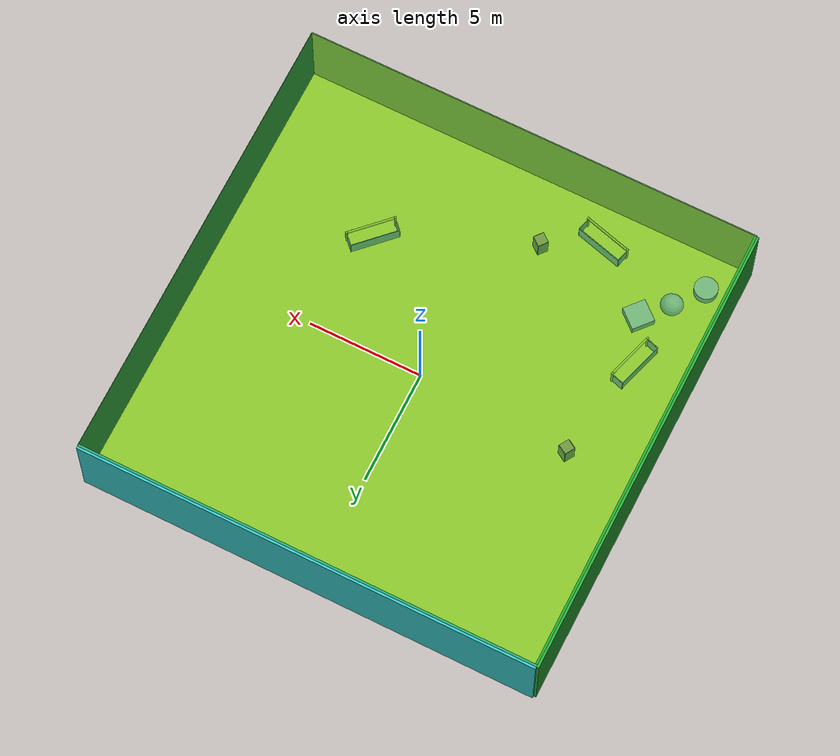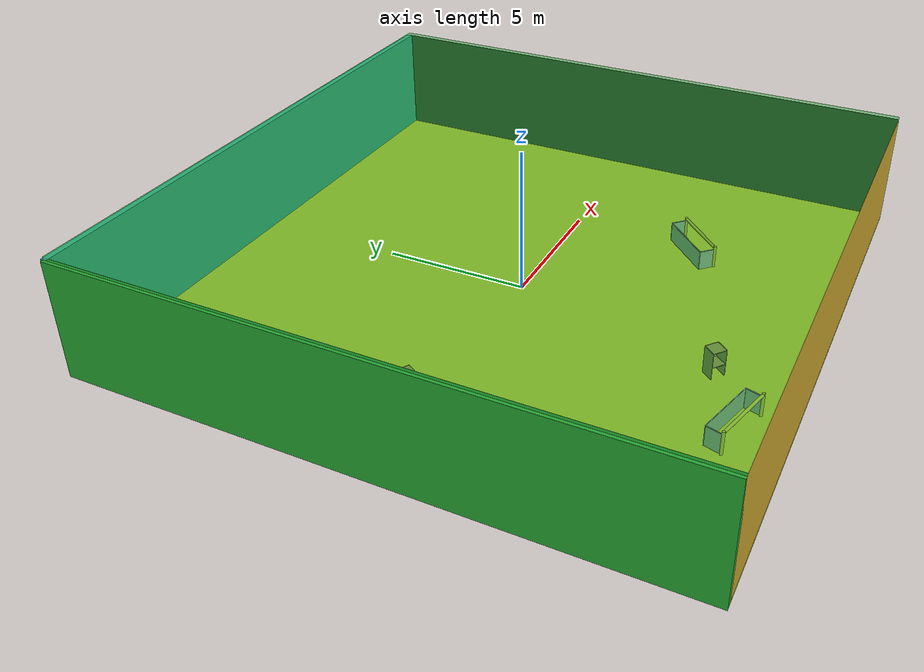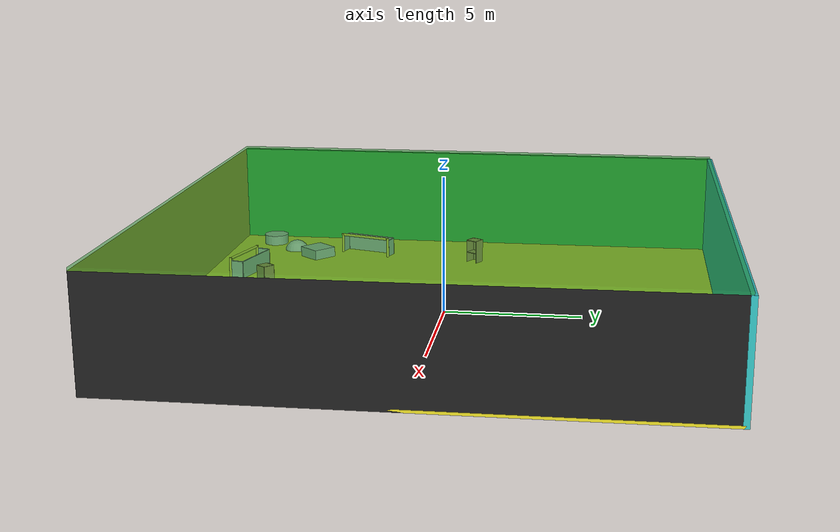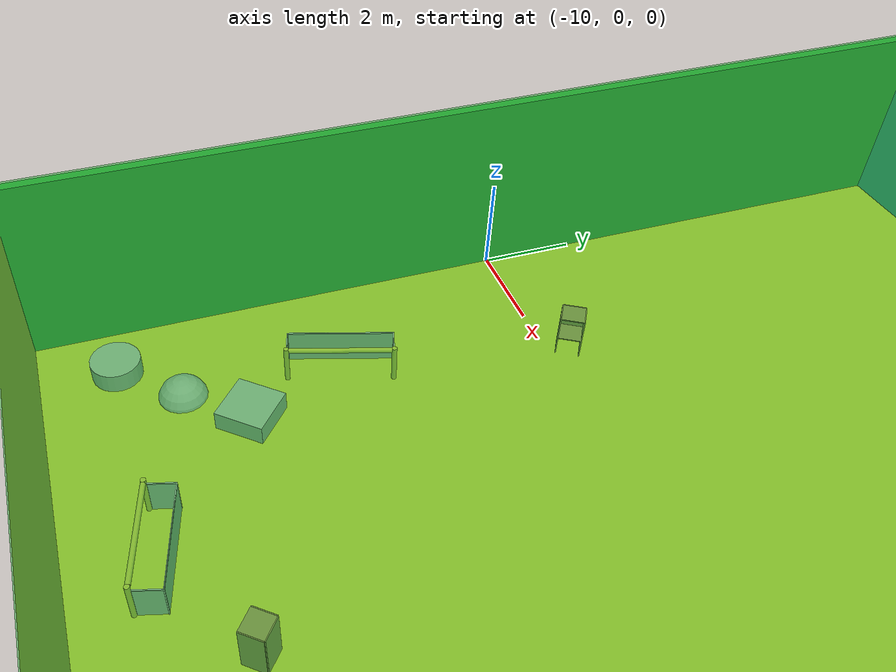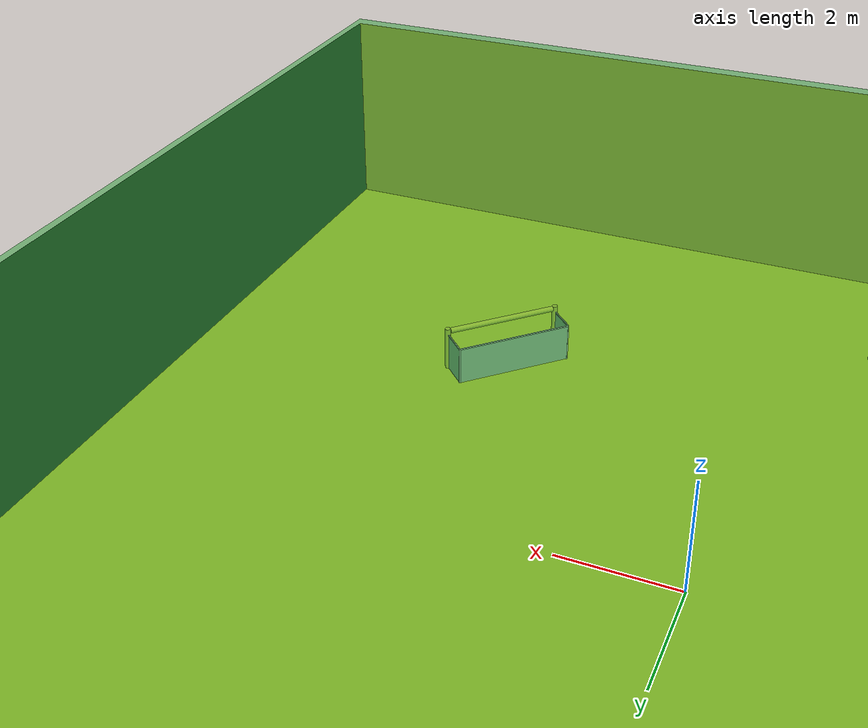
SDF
<sdf version="1.4">
 <world name="default">
  <physics type="ode">
   <max_step_size>0.001</max_step_size>
   <real_time_factor>1</real_time_factor>
   <real_time_update_rate>1000</real_time_update_rate>
   <gravity>0 0 -9.8</gravity>
  </physics>
  <scene><ambient>0.4 0.4 0.4 1</ambient><background>0.7 0.7 0.7 1</background><shadows>1</shadows></scene>
  <model name="Surrounding">
   <static>1</static>
   <link name="Ceiling">
    <collision name="Ceiling_Collision"><geometry><box><size>20 20 0.1</size></box></geometry></collision>
    <visual name="Ceiling_Visual">
     <geometry><box><size>20 20 0.1</size></box></geometry>
     <material>
      <script><uri>file://media/materials/scripts/gazebo.material</uri><name>Gazebo/GreenTransparent</name></script>
     </material>
    </visual>
    <pose>0 0 4.05 0 0 0</pose>
   </link>
   <link name="Wall_South">
    <collision name="Wall_South_Collision">
     <geometry><box><size>20 0 4</size></box></geometry>
     <pose>0 0 2 0 -0 0</pose>
    </collision>
    <visual name="Wall_South_Visual">
     <pose>0 0 2 0 -0 0</pose>
     <geometry><box><size>20 0 4</size></box></geometry>
     <material>
      <script><uri>file://media/materials/scripts/gazebo.material</uri><name>Gazebo/Gold</name></script>
     </material>
    </visual>
    <velocity_decay><linear>0</linear><angular>0</angular></velocity_decay>
    <pose>0 -10 0 0 -0 0</pose>
   </link>
   <link name="Wall_East">
    <collision name="Wall_21_Collision">
     <geometry><box><size>20 0 4</size></box></geometry>
     <pose>0 0 2 0 -0 0</pose>
    </collision>
    <visual name="Wall_21_Visual">
     <pose>0 0 2 0 -0 0</pose>
     <geometry><box><size>20 0 4</size></box></geometry>
     <material>
      <script><uri>file://media/materials/scripts/gazebo.material</uri><name>Gazebo/FlatBlack</name></script>
     </material>
    </visual>
    <velocity_decay><linear>0</linear><angular>0</angular></velocity_decay>
    <pose>10 0 0 0 -0 1.5708</pose>
   </link>
   <link name="Wall_North">
    <collision name="Wall_22_Collision">
     <geometry><box><size>20 0.2 4</size></box></geometry>
     <pose>0 0 2 0 -0 0</pose>
    </collision>
    <visual name="Wall_22_Visual">
     <pose>0 0 2 0 -0 0</pose>
     <geometry><box><size>20 0.2 4</size></box></geometry>
     <material>
      <script><uri>file://media/materials/scripts/gazebo.material</uri><name>Gazebo/Turquoise</name></script>
     </material>
    </visual>
    <velocity_decay><linear>0</linear><angular>0</angular></velocity_decay>
    <pose>0 10 0 0 -0 0</pose>
   </link>
   <link name="Wall_West">
    <collision name="Wall_23_Collision">
     <geometry><box><size>20 0.2 4</size></box></geometry>
     <pose>0 0 2 0 -0 0</pose>
    </collision>
    <visual name="Wall_23_Visual">
     <pose>0 0 2 0 -0 0</pose>
     <geometry><box><size>20 0.2 4</size></box></geometry>
     <material>
      <script><uri>file://media/materials/scripts/gazebo.material</uri><name>Gazebo/Green</name></script>
     </material>
    </visual>
    <velocity_decay><linear>0</linear><angular>0</angular></velocity_decay>
    <pose>-10 0 0 0 0 -1.5708</pose>
   </link>
   <link name="Ground_link">
    <collision name="collision">
     <pose>0 0 .05 0 -0 0</pose>
     <geometry><box><size>20 20 0.1</size></box></geometry>
    </collision>
    <visual name="visual">
     <pose>0 0 .05 0 -0 0</pose>
     <geometry><box><size>20 20 0.1</size></box></geometry>
     <material>
      <script><uri>file://media/materials/scripts/gazebo.material</uri><name>Gazebo/Yellow</name></script>
     </material>
    </visual>
   </link>
   <static>1</static>
  </model>
  <spherical_coordinates>
   <surface_model>EARTH_WGS84</surface_model>
   <latitude_deg>0</latitude_deg>
   <longitude_deg>0</longitude_deg>
   <elevation>0</elevation>
   <heading_deg>0</heading_deg>
  </spherical_coordinates>
  <light name="lightball_0" type="diffuse">
   <diffuse>0.8 0.8 0.8 1</diffuse>
   <specular>0.2 0.2 0.2 1</specular>
   <attenuation>
    <range>100</range>
    <constant>0.7</constant>
    <linear>0.01</linear>
    <quadratic>0.001</quadratic>
   </attenuation>
   <direction>-0.5 0.1 -0.9</direction>
   <pose>4.65923524701 4.9701374748 3.09953208604 0 0 0</pose>
  </light>
  <light name="lightball_1" type="diffuse">
   <diffuse>0.8 0.8 0.8 1</diffuse>
   <specular>0.2 0.2 0.2 1</specular>
   <attenuation>
    <range>100</range>
    <constant>0.7</constant>
    <linear>0.01</linear>
    <quadratic>0.001</quadratic>
   </attenuation>
   <direction>-0.5 0.1 -0.9</direction>
   <pose>0.825032883885 -9.02655396918 1.31493845901 0 0 0</pose>
  </light>
  <light name="lightball_2" type="diffuse">
   <diffuse>0.8 0.8 0.8 1</diffuse>
   <specular>0.2 0.2 0.2 1</specular>
   <attenuation>
    <range>100</range>
    <constant>0.7</constant>
    <linear>0.01</linear>
    <quadratic>0.001</quadratic>
   </attenuation>
   <direction>-0.5 0.1 -0.9</direction>
   <pose>0.427316207892 -3.94649487077 1.96150422918 0 0 0</pose>
  </light>
  <light name="lightball_3" type="diffuse">
   <diffuse>0.8 0.8 0.8 1</diffuse>
   <specular>0.2 0.2 0.2 1</specular>
   <attenuation>
    <range>100</range>
    <constant>0.7</constant>
    <linear>0.01</linear>
    <quadratic>0.001</quadratic>
   </attenuation>
   <direction>-0.5 0.1 -0.9</direction>
   <pose>0.330127478989 -9.77836191072 2.51302887529 0 0 0</pose>
  </light>
  <light name="lightball_4" type="diffuse">
   <diffuse>0.8 0.8 0.8 1</diffuse>
   <specular>0.2 0.2 0.2 1</specular>
   <attenuation>
    <range>100</range>
    <constant>0.7</constant>
    <linear>0.01</linear>
    <quadratic>0.001</quadratic>
   </attenuation>
   <direction>-0.5 0.1 -0.9</direction>
   <pose>1.87612195859 4.16350093729 1.74455908788 0 0 0</pose>
  </light>
  <light name="lightball_5" type="diffuse">
   <diffuse>0.8 0.8 0.8 1</diffuse>
   <specular>0.2 0.2 0.2 1</specular>
   <attenuation>
    <range>100</range>
    <constant>0.7</constant>
    <linear>0.01</linear>
    <quadratic>0.001</quadratic>
   </attenuation>
   <direction>-0.5 0.1 -0.9</direction>
   <pose>2.98234410226 2.32399133614 3.67910415288 0 0 0</pose>
  </light>
  <light name="lightball_6" type="diffuse">
   <diffuse>0.8 0.8 0.8 1</diffuse>
   <specular>0.2 0.2 0.2 1</specular>
   <attenuation>
    <range>100</range>
    <constant>0.7</constant>
    <linear>0.01</linear>
    <quadratic>0.001</quadratic>
   </attenuation>
   <direction>-0.5 0.1 -0.9</direction>
   <pose>8.24034120823 -7.07132633098 3.83906928258 0 0 0</pose>
  </light>
  <light name="lightball_7" type="diffuse">
   <diffuse>0.8 0.8 0.8 1</diffuse>
   <specular>0.2 0.2 0.2 1</specular>
   <attenuation>
    <range>100</range>
    <constant>0.7</constant>
    <linear>0.01</linear>
    <quadratic>0.001</quadratic>
   </attenuation>
   <direction>-0.5 0.1 -0.9</direction>
   <pose>-6.40698819331 9.16291556479 3.77521145412 0 0 0</pose>
  </light>
  <light name="lightball_8" type="diffuse">
   <diffuse>0.8 0.8 0.8 1</diffuse>
   <specular>0.2 0.2 0.2 1</specular>
   <attenuation>
    <range>100</range>
    <constant>0.7</constant>
    <linear>0.01</linear>
    <quadratic>0.001</quadratic>
   </attenuation>
   <direction>-0.5 0.1 -0.9</direction>
   <pose>0.558655732912 3.10069991504 3.48502492054 0 0 0</pose>
  </light>
  <light name="lightball_9" type="diffuse">
   <diffuse>0.8 0.8 0.8 1</diffuse>
   <specular>0.2 0.2 0.2 1</specular>
   <attenuation>
    <range>100</range>
    <constant>0.7</constant>
    <linear>0.01</linear>
    <quadratic>0.001</quadratic>
   </attenuation>
   <direction>-0.5 0.1 -0.9</direction>
   <pose>-9.81496637492 9.10559050224 3.49589581572 0 0 0</pose>
  </light>
  <light name="lightball_10" type="diffuse">
   <diffuse>0.8 0.8 0.8 1</diffuse>
   <specular>0.2 0.2 0.2 1</specular>
   <attenuation>
    <range>100</range>
    <constant>0.7</constant>
    <linear>0.01</linear>
    <quadratic>0.001</quadratic>
   </attenuation>
   <direction>-0.5 0.1 -0.9</direction>
   <pose>-3.94331735164 4.43573387747 1.49687214707 0 0 0</pose>
  </light>
  <light name="lightball_11" type="diffuse">
   <diffuse>0.8 0.8 0.8 1</diffuse>
   <specular>0.2 0.2 0.2 1</specular>
   <attenuation>
    <range>100</range>
    <constant>0.7</constant>
    <linear>0.01</linear>
    <quadratic>0.001</quadratic>
   </attenuation>
   <direction>-0.5 0.1 -0.9</direction>
   <pose>5.44163521337 -3.42769356342 3.43079378334 0 0 0</pose>
  </light>
  <light name="lightball_12" type="diffuse">
   <diffuse>0.8 0.8 0.8 1</diffuse>
   <specular>0.2 0.2 0.2 1</specular>
   <attenuation>
    <range>100</range>
    <constant>0.7</constant>
    <linear>0.01</linear>
    <quadratic>0.001</quadratic>
   </attenuation>
   <direction>-0.5 0.1 -0.9</direction>
   <pose>2.170979805 4.7690479397 0.695154798935 0 0 0</pose>
  </light>
  <include>
   <uri>model://textured_shapes</uri>
   <pose>-7.75800524914 -7.33664060178 0 0 0 2.42972814926</pose>
  </include>
  <include>
   <uri>model://robocup_3Dsim_goal</uri>
   <pose>-7.2918658039 -4.27419284882 0 0 0 2.84886015653</pose>
  </include>
  <include><uri>model://cabinet</uri><pose>-6.73954922175 0.41166676639 0 0 0 2.60287107536</pose></include>
  <include>
   <uri>model://robocup_3Dsim_goal</uri>
   <pose>-4.18705805254 -8.66255988973 0 0 0 1.30554362209</pose>
  </include>
  <include><uri>model://cabinet</uri><pose>-1.87293397411 -7.17166563278 0 0 0 0.887294331133</pose></include>
  <include>
   <uri>model://robocup_3Dsim_goal</uri>
   <pose>4.63345603974 -4.67736277312 0 0 0 2.35793664467</pose>
  </include>
 </world>
</sdf>

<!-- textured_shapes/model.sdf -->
<sdf version="1.6">
  <model name="textured_shapes">
    <pose>0 0 0.5 0 0 0</pose>
    <link name="box">
      <pose>0 -1.5 0 0 0 0</pose>
      <collision name="collision">
        <geometry>
          <box>
            <size>1 1 1</size>
          </box>
        </geometry>
      </collision>
      <visual name="visual">
        <geometry>
          <box>
            <size>1 1 1</size>
          </box>
        </geometry>
        <material>
          <script>
            <uri>model://../model_source/models/textured_shapes/materials/scripts</uri>
            <uri>model://../model_source/models/textured_shapes/materials/textures</uri>
            <name>TexturedShape/Squares</name>
          </script>
        </material>
      </visual>
    </link>
    <link name="sphere">
      <collision name="collision">
        <geometry>
          <sphere>
            <radius>0.5</radius>
          </sphere>
        </geometry>
      </collision>
      <visual name="visual">
        <geometry>
          <sphere>
            <radius>0.5</radius>
          </sphere>
        </geometry>
        <material>
          <script>
            <uri>model://../model_source/models/textured_shapes/materials/scripts</uri>
            <uri>model://../model_source/models/textured_shapes/materials/textures</uri>
            <name>TexturedShape/Squares</name>
          </script>
        </material>
      </visual>
    </link>
    <link name="cylinder">
      <pose>0 1.5 0 0 0 0</pose>
      <collision name="collision">
        <geometry>
          <cylinder>
            <radius>0.5</radius>
            <length>1</length>
          </cylinder>
        </geometry>
      </collision>
      <visual name="visual">
        <geometry>
          <cylinder>
            <radius>0.5</radius>
            <length>1</length>
          </cylinder>
        </geometry>
        <material>
          <script>
            <uri>model://../model_source/models/textured_shapes/materials/scripts</uri>
            <uri>model://../model_source/models/textured_shapes/materials/textures</uri>
            <name>TexturedShape/Squares</name>
          </script>
        </material>
      </visual>
    </link>
  </model>
</sdf>

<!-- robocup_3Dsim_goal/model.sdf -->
<sdf version="1.5">
  <model name="robocup_3d_goal">
    <static>true</static>
    <link name="left_post">
      <pose>0 1.05 0.45 0 0 0</pose>
      <collision name="collision">
        <geometry>
          <cylinder>
            <radius>0.05</radius>
            <length>0.9</length>
          </cylinder>
        </geometry>
      </collision>
      <visual name="visual">
        <geometry>
          <cylinder>
            <radius>0.05</radius>
            <length>0.9</length>
          </cylinder>
        </geometry>
        <material>
          <script>
            <uri>file://media/materials/scripts/gazebo.material</uri>
            <name>Gazebo/ZincYellow</name>
          </script>
        </material>
      </visual>
    </link>
    <link name="left_support_horiz_lower">
      <pose>0.30 1.05 0.01 0 0 0</pose>
      <collision name="collision">
        <geometry>
          <box>
            <size>0.50 0.02 0.02</size>
          </box>
        </geometry>
      </collision>
      <visual name="visual">
        <geometry>
          <box>
            <size>0.50 0.02 0.02</size>
          </box>
        </geometry>
        <material>
          <script>
            <uri>file://media/materials/scripts/gazebo.material</uri>
            <name>Gazebo/White</name>
          </script>
        </material>
      </visual>
    </link>
    <link name="left_support_horiz_upper">
      <pose>0.30 1.05 0.79 0 0 0</pose>
      <collision name="collision">
        <geometry>
          <box>
            <size>0.50 0.02 0.02</size>
          </box>
        </geometry>
      </collision>
      <visual name="visual">
        <geometry>
          <box>
            <size>0.50 0.02 0.02</size>
          </box>
        </geometry>
        <material>
          <script>
            <uri>file://media/materials/scripts/gazebo.material</uri>
            <name>Gazebo/White</name>
          </script>
        </material>
      </visual>
    </link>
    <link name="left_support_vertical">
      <pose>0.56 1.05 0.4 0 1.5708 0</pose>
      <collision name="collision">
        <geometry>
          <box>
            <size>0.80 0.02 0.02</size>
          </box>
        </geometry>
      </collision>
      <visual name="visual">
        <geometry>
          <box>
            <size>0.80 0.02 0.02</size>
          </box>
        </geometry>
        <material>
          <script>
            <uri>file://media/materials/scripts/gazebo.material</uri>
            <name>Gazebo/White</name>
          </script>
        </material>
      </visual>
    </link>
    <link name="right_support_horiz_lower">
      <pose>0.30 -1.05 0.01 0 0 0</pose>
      <collision name="collision">
        <geometry>
          <box>
            <size>0.50 0.02 0.02</size>
          </box>
        </geometry>
      </collision>
      <visual name="visual">
        <geometry>
          <box>
            <size>0.50 0.02 0.02</size>
          </box>
        </geometry>
        <material>
          <script>
            <uri>file://media/materials/scripts/gazebo.material</uri>
            <name>Gazebo/White</name>
          </script>
        </material>
      </visual>
    </link>
    <link name="right_support_horiz_upper">
      <pose>0.30 -1.05 0.79 0 0 0</pose>
      <collision name="collision">
        <geometry>
          <box>
            <size>0.50 0.02 0.02</size>
          </box>
        </geometry>
      </collision>
      <visual name="visual">
        <geometry>
          <box>
            <size>0.50 0.02 0.02</size>
          </box>
        </geometry>
        <material>
          <script>
            <uri>file://media/materials/scripts/gazebo.material</uri>
            <name>Gazebo/White</name>
          </script>
        </material>
      </visual>
    </link>
    <link name="right_support_vertical">
      <pose>0.56 -1.05 0.4 0 1.5708 0</pose>
      <collision name="collision">
        <geometry>
          <box>
            <size>0.80 0.02 0.02</size>
          </box>
        </geometry>
      </collision>
      <visual name="visual">
        <geometry>
          <box>
            <size>0.80 0.02 0.02</size>
          </box>
        </geometry>
        <material>
          <script>
            <uri>file://media/materials/scripts/gazebo.material</uri>
            <name>Gazebo/White</name>
          </script>
        </material>
      </visual>
    </link>
    <link name="center_support_horiz_lower">
      <pose>0.56 0 0.01 0 1.5708 0</pose>
      <collision name="collision">
        <geometry>
          <box>
            <size>0.02 2.08 0.02</size>
          </box>
        </geometry>
      </collision>
      <visual name="visual">
        <geometry>
          <box>
            <size>0.02 2.08 0.02</size>
          </box>
        </geometry>
        <material>
          <script>
            <uri>file://media/materials/scripts/gazebo.material</uri>
            <name>Gazebo/White</name>
          </script>
        </material>
      </visual>
    </link>
    <link name="center_support_horiz_upper">
      <pose>0.56 0 0.79 0 1.5708 0</pose>
      <collision name="collision">
        <geometry>
          <box>
            <size>0.02 2.08 0.02</size>
          </box>
        </geometry>
      </collision>
      <visual name="visual">
        <geometry>
          <box>
            <size>0.02 2.08 0.02</size>
          </box>
        </geometry>
        <material>
          <script>
            <uri>file://media/materials/scripts/gazebo.material</uri>
            <name>Gazebo/White</name>
          </script>
        </material>
      </visual>
    </link>
    <link name="right_post">
      <pose>0 -1.05 0.45 0 0 0</pose>
      <collision name="collision">
        <geometry>
          <cylinder>
            <radius>0.05</radius>
            <length>0.9</length>
          </cylinder>
        </geometry>
      </collision>
      <visual name="visual">
        <geometry>
          <cylinder>
            <radius>0.05</radius>
            <length>0.9</length>
          </cylinder>
        </geometry>
        <material>
          <script>
            <uri>file://media/materials/scripts/gazebo.material</uri>
            <name>Gazebo/ZincYellow</name>
          </script>
        </material>
      </visual>
    </link>
    <link name="crossbar">
      <pose>0 0 0.85 1.57 1.57 0</pose>
      <collision name="collision">
        <geometry>
          <cylinder>
            <radius>0.05</radius>
            <length>2.0</length>
          </cylinder>
        </geometry>
      </collision>
      <visual name="visual">
        <geometry>
          <cylinder>
            <radius>0.05</radius>
            <length>2.0</length>
          </cylinder>
        </geometry>
        <material>
          <script>
            <uri>file://media/materials/scripts/gazebo.material</uri>
            <name>Gazebo/ZincYellow</name>
          </script>
        </material>
      </visual>
    </link>
    <link name="center_net">
      <pose>0.56 0 0.40 0 0 0</pose>
      <collision name="collision">
        <geometry>
          <box>
            <size>0.01 2.1 0.80</size>
          </box>
        </geometry>
      </collision>
      <visual name="visual">
        <geometry>
          <box>
            <size>0.01 2.1 0.80</size>
          </box>
        </geometry>
        <material>
          <script>
            <uri>model://../model_source/models/robocup09_spl_field/materials/scripts/</uri>
            <uri>model://../model_source/models/robocup09_spl_field/materials/textures/</uri>
            <name>RoboCup/Net</name>
          </script>
        </material>
      </visual>
    </link>
    <link name="left_net">
      <pose>0.30 1.05 0.40 0 0 0</pose>
      <collision name="collision">
        <geometry>
          <box>
            <size>0.50 0.01 0.76</size>
          </box>
        </geometry>
      </collision>
      <visual name="visual">
        <geometry>
          <box>
            <size>0.50 0.01 0.76</size>
          </box>
        </geometry>
        <material>
          <script>
            <uri>model://../model_source/models/robocup09_spl_field/materials/scripts/</uri>
            <uri>model://../model_source/models/robocup09_spl_field/materials/textures/</uri>
            <name>RoboCup/Net</name>
          </script>
        </material>
      </visual>
    </link>
    <link name="right_net">
      <pose>0.30 -1.05 0.40 0 0 0</pose>
      <collision name="collision">
        <geometry>
          <box>
            <size>0.50 0.01 0.76</size>
          </box>
        </geometry>
      </collision>
      <visual name="visual">
        <geometry>
          <box>
            <size>0.50 0.01 0.76</size>
          </box>
        </geometry>
        <material>
          <script>
            <uri>model://../model_source/models/robocup09_spl_field/materials/scripts/</uri>
            <uri>model://../model_source/models/robocup09_spl_field/materials/textures/</uri>
            <name>RoboCup/Net</name>
          </script>
        </material>
      </visual>
    </link>
  </model>
</sdf>

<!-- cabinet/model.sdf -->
<sdf version="1.5">
  <model name="cabinet">
    <static>true</static>
    <link name="cabinet_bottom_plate">
      <inertial>
        <pose>0 0 -1 0 0 0</pose>
        <inertia>
          <ixx>2.050000</ixx>
          <ixy>0</ixy>
          <ixz>0</ixz>
          <iyy>2.050000</iyy>
          <iyz>0</iyz>
          <izz>2.050000</izz>
        </inertia>
        <mass>25.000000</mass>
      </inertial>
      <collision name="cabinet_bottom_plate_geom">
        <pose>0 0 0.010000 0 0 0</pose>
        <geometry>
          <box>
            <size>0.450000 0.450000 0.020000</size>
          </box>
        </geometry>
      </collision>
      <visual name="cabinet_bottom_plate_geom_visual">
        <pose>0 0 0.010000 0 0 0</pose>
        <geometry>
          <box>
            <size>0.450000 0.450000 0.020000</size>
          </box>
        </geometry>
        <material>
          <script>
            <uri>model://media/materials/scripts/gazebo.material</uri>
            <name>Gazebo/Wood</name>
          </script>
        </material>
      </visual>
      <collision name="cabinet_bottom_plate_geom_cabinet_back_plate">
        <pose>0.235000 0 0.510000 0 0 0</pose>
        <geometry>
          <box>
            <size>0.020000 0.450000 1.020000</size>
          </box>
        </geometry>
      </collision>
      <visual name="cabinet_bottom_plate_geom_cabinet_back_plate_visual">
        <pose>0.235000 0 0.510000 0 0 0</pose>
        <geometry>
          <box>
            <size>0.020000 0.450000 1.020000</size>
          </box>
        </geometry>
        <material>
          <script>
            <uri>model://media/materials/scripts/gazebo.material</uri>
            <name>Gazebo/Wood</name>
          </script>
        </material>
      </visual>
      <collision name="cabinet_bottom_plate_geom_cabinet_left_plate">
        <pose>0 0.235000 0.510000 0 0 0</pose>
        <geometry>
          <box>
            <size>0.450000 0.020000 1.020000</size>
          </box>
        </geometry>
      </collision>
      <visual name="cabinet_bottom_plate_geom_cabinet_left_plate_visual">
        <pose>0 0.235000 0.510000 0 0 0</pose>
        <geometry>
          <box>
            <size>0.450000 0.020000 1.020000</size>
          </box>
        </geometry>
        <material>
          <script>
            <uri>model://media/materials/scripts/gazebo.material</uri>
            <name>Gazebo/Wood</name>
          </script>
        </material>
      </visual>
      <collision name="cabinet_bottom_plate_geom_cabinet_middle_plate">
        <pose>0 0 0.510000 0 0 0</pose>
        <geometry>
          <box>
            <size>0.450000 0.450000 0.020000</size>
          </box>
        </geometry>
      </collision>
      <visual name="cabinet_bottom_plate_geom_cabinet_middle_plate_visual">
        <pose>0 0 0.510000 0 0 0</pose>
        <geometry>
          <box>
            <size>0.450000 0.450000 0.020000</size>
          </box>
        </geometry>
        <material>
          <script>
            <uri>model://media/materials/scripts/gazebo.material</uri>
            <name>Gazebo/Wood</name>
          </script>
        </material>
      </visual>
      <collision name="cabinet_bottom_plate_geom_cabinet_right_plate">
        <pose>0 -0.235000 0.510000 0 0 0</pose>
        <geometry>
          <box>
            <size>0.450000 0.020000 1.020000</size>
          </box>
        </geometry>
      </collision>
      <visual name="cabinet_bottom_plate_geom_cabinet_right_plate_visual">
        <pose>0 -0.235000 0.510000 0 0 0</pose>
        <geometry>
          <box>
            <size>0.450000 0.020000 1.020000</size>
          </box>
        </geometry>
        <material>
          <script>
            <uri>model://media/materials/scripts/gazebo.material</uri>
            <name>Gazebo/Wood</name>
          </script>
        </material>
      </visual>
      <collision name="cabinet_bottom_plate_geom_cabinet_top_plate">
        <pose>0 0 1.010000 0 0 0</pose>
        <geometry>
          <box>
            <size>0.450000 0.450000 0.020000</size>
          </box>
        </geometry>
      </collision>
      <visual name="cabinet_bottom_plate_geom_cabinet_top_plate_visual">
        <pose>0 0 1.010000 0 0 0</pose>
        <geometry>
          <box>
            <size>0.450000 0.450000 0.020000</size>
          </box>
        </geometry>
        <material>
          <script>
            <uri>model://media/materials/scripts/gazebo.material</uri>
            <name>Gazebo/Wood</name>
          </script>
        </material>
      </visual>
    </link>
  </model>
</sdf>
